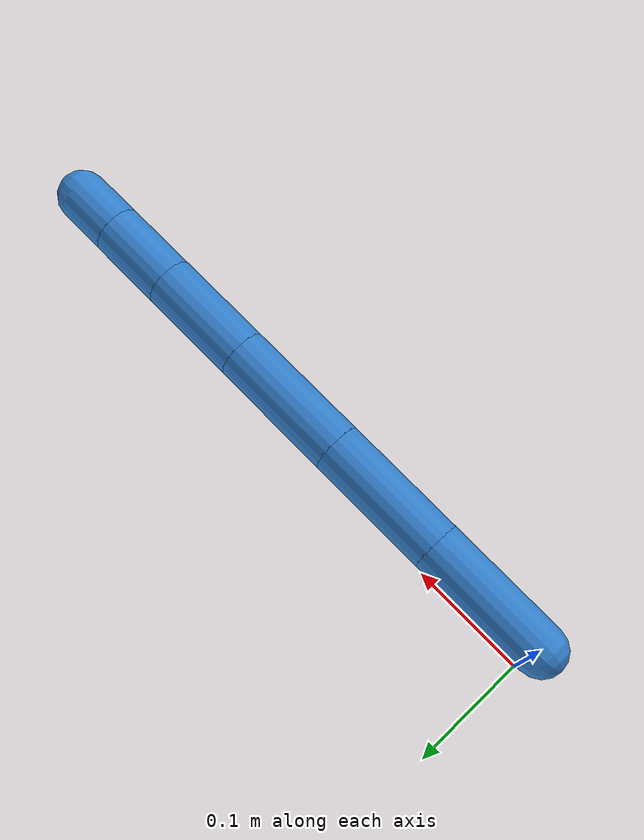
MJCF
<mujoco model="minimal_six_joint_arm">
  <option timestep="0.01"/>

  <default>
    <joint damping="0.1" armature="0.01" limited="true"/>
    <geom type="capsule" size="0.02 0.08" rgba="0.2 0.5 0.8 1"/>
    <position kp="20" ctrllimited="true" ctrlrange="-3.14 3.14"/>
  </default>

  <worldbody>
    <light name="top" pos="0 0 1"/>
    <body name="link_1" pos="0 0 0.1">
      <joint name="joint_1" type="hinge" axis="0 0 1" range="-180 180"/>
      <geom fromto="0 0 0 0.1 0 0"/>
      <body name="link_2" pos="0.1 0 0">
        <joint name="joint_2" type="hinge" axis="0 1 0" range="-180 180"/>
        <geom fromto="0 0 0 0.1 0 0"/>
        <body name="link_3" pos="0.1 0 0">
          <joint name="joint_3" type="hinge" axis="0 1 0" range="-180 180"/>
          <geom fromto="0 0 0 0.1 0 0"/>
          <body name="link_4" pos="0.1 0 0">
            <joint name="joint_4" type="hinge" axis="1 0 0" range="-180 180"/>
            <geom fromto="0 0 0 0.08 0 0"/>
            <body name="link_5" pos="0.08 0 0">
              <joint name="joint_5" type="hinge" axis="0 1 0" range="-180 180"/>
              <geom fromto="0 0 0 0.06 0 0"/>
              <body name="link_6" pos="0.06 0 0">
                <joint name="joint_6" type="hinge" axis="1 0 0" range="-180 180"/>
                <geom fromto="0 0 0 0.04 0 0"/>
              </body>
            </body>
          </body>
        </body>
      </body>
    </body>
  </worldbody>

  <actuator>
    <position name="joint_1_position" joint="joint_1"/>
    <position name="joint_2_position" joint="joint_2"/>
    <position name="joint_3_position" joint="joint_3"/>
    <position name="joint_4_position" joint="joint_4"/>
    <position name="joint_5_position" joint="joint_5"/>
    <position name="joint_6_position" joint="joint_6"/>
  </actuator>
</mujoco>
